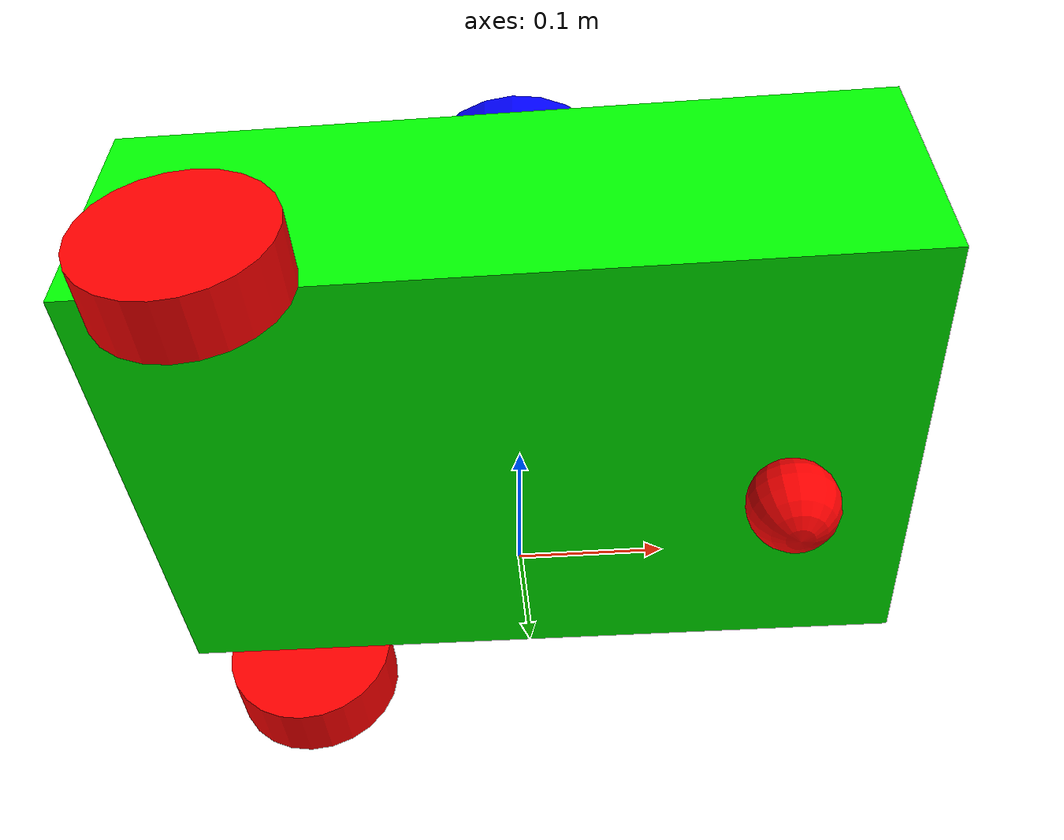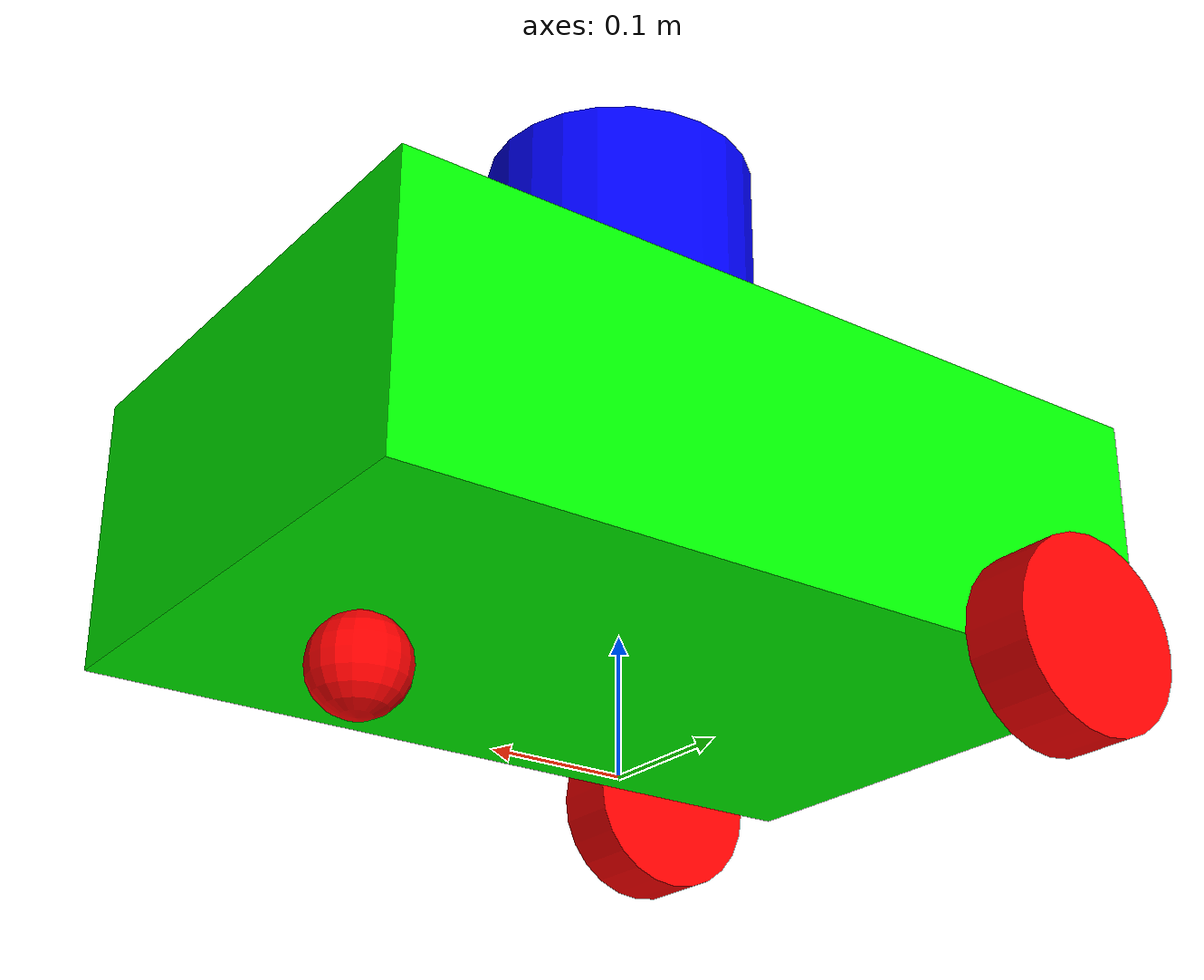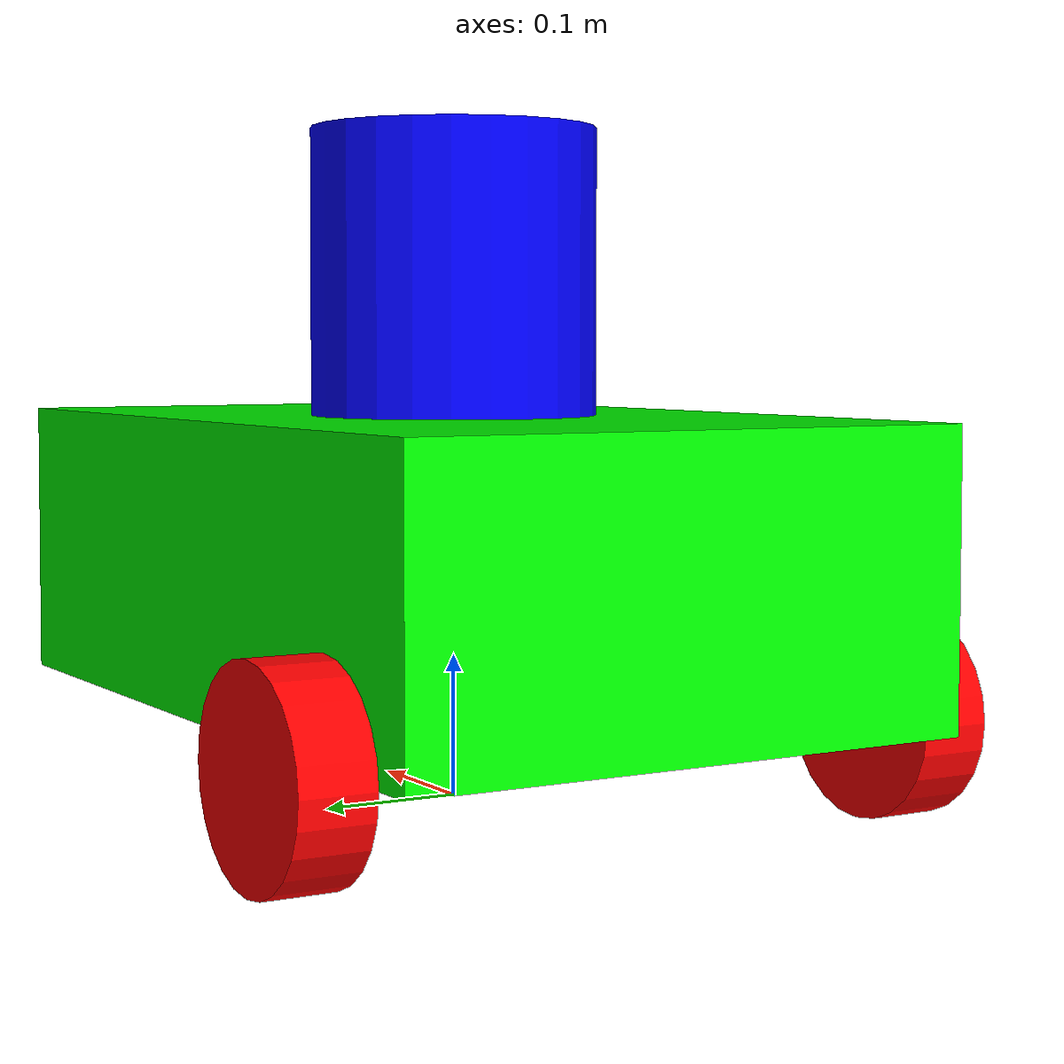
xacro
<?xml version="1.0"?>
<robot name="my_robot" xmlns:xacro="http://www.ros.org/wiki/xacro">

    <xacro:include filename="robot_materials.urdf.xacro" />
    <xacro:include filename="inertia_formulas.urdf.xacro" />

    <xacro:property name="base_length" value = "0.6"/>
    <xacro:property name="base_width" value = "0.4"/>
    <xacro:property name="base_height" value = "0.2"/>
    <xacro:property name="base_mass" value = "5"/>
    <xacro:property name="wheel_radius" value = "0.07"/>
    <xacro:property name="wheel_height" value = "0.05"/>
    <xacro:property name="wheel_mass" value = "4"/>
    <xacro:property name="front_wheel_mass" value = "2"/>

    <xacro:macro name="wheel_link" params ="prefix r h z">
        <link name="${prefix}_wheel_link">
            <visual>
                <geometry>
                    <cylinder radius="${r}" length="${h}" />
                </geometry>
                <origin xyz="0 0 ${z}" rpy="0 0 0" />
                <material name="red"/>
            </visual>
            <collision>
                <geometry>
                    <cylinder radius="${r}" length="${h}" />
                    </geometry>
                    <origin xyz="0 0 ${z}" rpy="0 0 0" />
            </collision>
            <xacro:cylinder_inertia mass ="${1*wheel_mass}" radius ="${2*wheel_radius}" height="${2*wheel_height}" xyz="0 0 ${z}" rpy="0 0 0"/>
        </link>
    </xacro:macro>

    <link name="base_link">
        <visual>
            <geometry>
                <box size="${base_length} ${base_width} ${base_height}" />
            </geometry>
            <origin xyz="0 0 0.1" rpy="0 0 0" />
            <!-- the origin tell us location to the base -->
            <!-- add material here for color -->
            <material name="green"/>
        </visual>
        <collision>
            <geometry>
                <box size="${base_length} ${base_width} ${base_height}" />
            </geometry>
            <origin xyz="0 0 0.1" rpy="0 0 0" />
        </collision>
        <xacro:cuboid_inertia mass ="${base_mass}" length="${2*base_length}" width="${2*base_width}" height="${2*base_height}" xyz="0 0 0.1" rpy="0 0 0"/>
    </link>

    <link name="second_link">
        <visual>
            <geometry>

                <cylinder radius="0.1" length="0.2" />
            </geometry>
            <origin xyz="0 0 0.1" rpy="0 0 0" />
            <!-- the origin tell us location to the base -->
            <!-- add material here for color -->
            <material name="blue"/>
        </visual>
        <collision>
            <geometry>

                <cylinder radius="0.1" length="0.2" />
            </geometry>
            <origin xyz="0 0 0.1" rpy="0 0 0" />
        </collision>
        <xacro:cylinder_inertia mass ="${wheel_mass}" radius ="${2*0.1}" height="${2*0.2}" xyz="0 0 0.1" rpy="0 0 0"/>
    </link>

   <xacro:wheel_link prefix="left" r ="${wheel_radius}" h= "${wheel_height}" z="${-1*wheel_height*0.5}"/>
   <xacro:wheel_link prefix="right" r ="${wheel_radius}" h= "${wheel_height}" z="${wheel_height*0.5}"/>

    <link name="front_wheel_link">
        <visual>
            <geometry>
                <sphere radius="${wheel_radius/2}"/>
            </geometry>
            <origin xyz="0 0 0" rpy="0 0 0" />
            <material name="red"/>
        </visual>
        <collision>
            <geometry>
                <sphere radius="${wheel_radius/2}"/>
            </geometry>
            <origin xyz="0 0 0" rpy="0 0 0" />
        </collision>
        <xacro:sphere_inertia mass ="${front_wheel_mass}" radius="${2*wheel_radius/2}" xyz="0 0 0" rpy="0 0 0"/>
    </link>

    <link name="base_foot_print"/>

    <joint name="base_foot_print_joint" type ="fixed">
        <parent link="base_foot_print" />
        <child link="base_link" />
        <origin xyz="0 0 ${wheel_radius}" rpy="0 0 0" />
    </joint>

    <joint name="base_front_wheel_joint" type ="continuous">
        <parent link="base_link" />
        <child link="front_wheel_link" />
        <origin xyz="0.2 0 -0.035" rpy="0 0 0" />
        <axis xyz="0 1 0" />
    </joint>

    <joint name="base_right_wheel_joint" type ="continuous">
        <parent link="base_link" />
        <child link="right_wheel_link" />
        <origin xyz="-0.2 -0.2 0" rpy="${pi/2} 0 0" />
        <axis xyz="0 0 1" />
    </joint>

    <joint name="base_left_wheel_joint" type ="continuous">
        <parent link="base_link" />
        <child link="left_wheel_link" />
        <origin xyz="-0.2 0.2 0" rpy="${pi/2} 0 0" />
        <axis xyz="0 0 1" />
    </joint>

    <joint name="base_second_joint" type ="prismatic">
        <parent link="base_link" />
        <child link="second_link" />
        <origin xyz="0 0 0.2" rpy="0 0 0" />
        <!-- rotate above z using the syuntax below -->
        <axis xyz="1 0 0" />
        <limit lower="0.0" upper="0.2" velocity ="100" effort="100"/>

    </joint>

</robot>

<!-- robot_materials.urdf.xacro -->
<robot xmlns:xacro="http://www.ros.org/wiki/xacro">

    <!-- how to add color -->
    <material name="green">
        <!-- rgba = red,yellow,blue,alpha = transparency -->
        <color rgba="0 1 0 1" />
    </material>

    <material name="blue">
        <!-- rgba = red,yellow,blue,alpha = transparency -->
        <color rgba="0 0 1 1" />
    </material>

    <material name="red">
        <!-- rgba = red,yellow,blue,alpha = transparency -->
        <color rgba="1 0 0 1" />
    </material>

</robot>

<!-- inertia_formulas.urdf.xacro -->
<robot xmlns:xacro="http://www.ros.org/wiki/xacro">

    <!-- Moment of inertia macro function for a cylinder -->
    <xacro:macro name="cylinder_inertia" params="mass radius height xyz rpy">
        <inertial>
            <origin xyz="${xyz}" rpy="${rpy}" />
            <mass value="${mass}" />
            <inertia ixx="${mass * (3 * radius**2 + height**2) / 12}" ixy="0" ixz="0" iyy="${mass * (3 * radius**2 + height**2) / 12}" iyz="0" izz="${mass * radius**2 / 2}" />
         </inertial>
    </xacro:macro>

    <!-- Moment of inertia macro function for a square -->
    <xacro:macro name="cuboid_inertia" params="mass length width height xyz rpy">
        <inertial>
            <origin xyz="${xyz}" rpy="${rpy}" />
            <mass value="${mass}" />
            <inertia ixx="${(mass/12) * (width**2 + height**2)}" ixy="0" ixz="0" iyy="${(mass/12) * (length**2 + height**2)}" iyz="0" izz="${(mass/12) * (length**2 + width**2)}" />
        </inertial>
    </xacro:macro>

    <xacro:macro name="sphere_inertia" params="mass radius xyz rpy">
        <inertial>
            <origin xyz="${xyz}" rpy="${rpy}" />
            <mass value="${mass}" />
            <inertia ixx="${(2 * mass * radius**2) / 5}" ixy="0" ixz="0" iyy="${(2 * mass * radius**2) / 5}" iyz="0" izz="${(2 * mass * radius**2) / 5}" />
        </inertial>
    </xacro:macro>

</robot>
